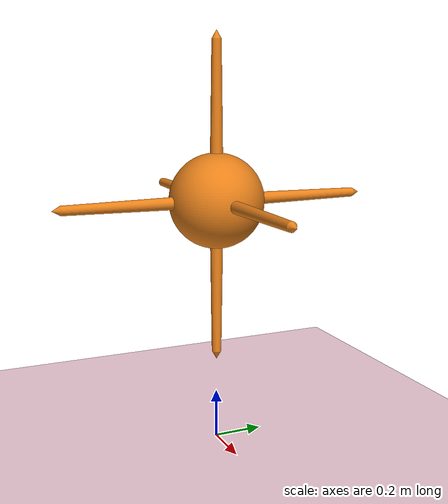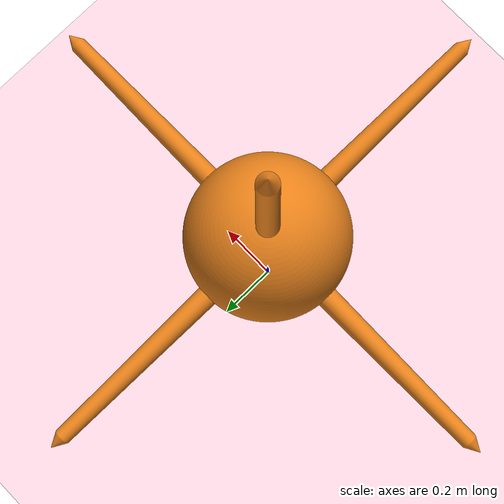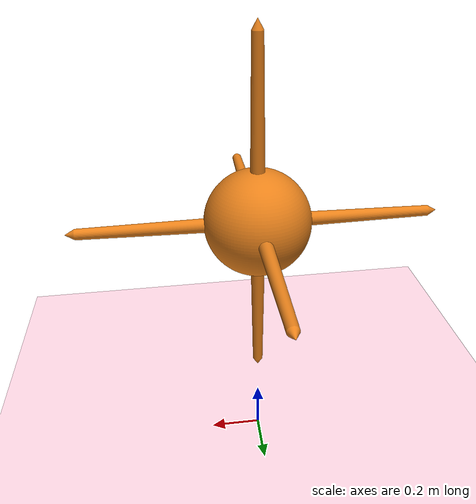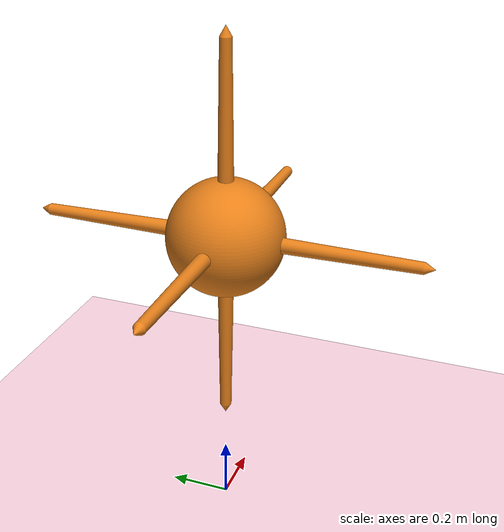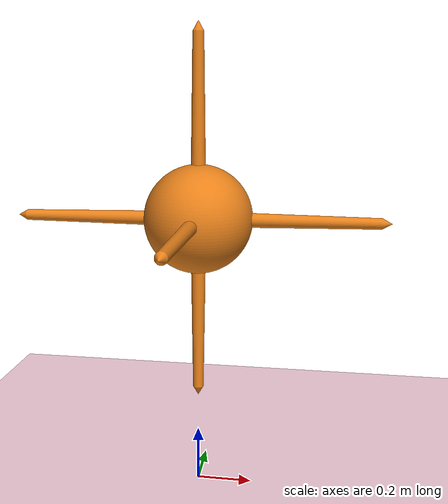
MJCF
<mujoco model='urchin6'>
    <compiler inertiafromgeom='auto' angle='degree' eulerseq='xyz' meshdir='meshes'/>
    <size nuser_actuator='1' nuser_sensor='1' nuser_geom='1'/>
    <option timestep='0.01' iterations='50' solver='PGS' gravity='0 0 -9.81'/>
    <!-- Gravity will change based on the exterr. body we are sim -->

    <visual>

    </visual>

    <default>
        <joint limited='true'/>
        <motor ctrllimited='true'/>
        <geom contype='0' conaffinity='0' condim='1' solref='0.005 1'/>
        <equality solref='0.005 1'/>
        <default class='urchin'>
            <geom material='urchin'/>
        </default>

        <default class='collision'>
            <!-- User parameter for geoms is used to identify collision types -->
            <geom material='collision' contype='1' user='2'/>
        </default>

	</default>

	<asset>
	    <texture type='skybox' builtin='gradient' width='100' height='100' rgb1='0.4 0.6 0.8' rgb2='0 0 0'/>
        <texture name='plane' type='2d' builtin='checker' rgb1='1 1 1' rgb2='1 0.7 0.8' width='100' height='100'/>
        <material name='plane' reflectance='0' texture='plane' texrepeat='1 1' texuniform='true'/>
        <material name='urchin' rgba='0.9 0.5 0.1 1'/>
        <mesh name='body' scale='1.5 1.5 1.5' file='sphere_body.stl'/>
        <mesh name='spine' file='rod_spine_w_point.stl'/>
        <material name='collision' rgba='0.1 0.5 0.9 0'/>
	</asset>

	<worldbody>
		<geom name='floor' pos='0.001 0 0' size='10 10 .125' type='plane' material='plane' conaffinity='15'/>
        <light castshadow='true' directional='true' pos='0 0 3' dir='0 0 -1' diffuse='0.4 0.4 0.4' specular='0 0 0'/>
        <body name='body' pos='0 0 1' childclass='urchin'>
            <camera name='track' pos='0 -3 1' zaxis='0 -1 0.5' mode='track'/>
            <joint type='slide' axis='1 0 0' limited='false'/>
            <joint type='slide' axis='0 1 0' limited='false'/>
            <joint type='slide' axis='0 0 1' limited='false' ref='1.01'/>
            <joint type='ball' limited='false'/>
            <geom type='mesh' mesh='body'/>
            <geom type='mesh' mesh='body' class='collision'/>
            <site name='imu' size='0.01' pos='0 0 0'/>

            <body name='spine1' pos='0 0 -.55' euler='0 0 0'>
                <joint name='spine1' type='slide' range='0 .1' damping='10'/>
                <geom type='mesh' mesh='spine' class='collision'/>
                <geom type='mesh' mesh='spine'/>
            </body>

            <body name='spine2' pos='0 .55 0' euler='90 0 0'>
                <joint name='spine2' type='slide' range='0 .1' damping='10'/>
                <geom type='mesh' mesh='spine' class='collision'/>
                <geom type='mesh' mesh='spine'/>
            </body>

            <body name='spine3' pos='0 0 .55' euler='180 0 0'>
                <joint name='spine3' type='slide' range='0 .1' damping='10'/>
                <geom type='mesh' mesh='spine' class='collision'/>
                <geom type='mesh' mesh='spine'/>
            </body>

            <body name='spine4' pos='0 -.55 0' euler='270 0 0'>
                <joint name='spine4' type='slide' range='0 .1' damping='10'/>
                <geom type='mesh' mesh='spine' class='collision'/>
                <geom type='mesh' mesh='spine'/>
            </body>

            <body name='spine5' pos='-.55 0 0' euler='0 90 0'>
                <joint name='spine5' type='slide' range='0 .1' damping='10'/>
                <geom type='mesh' mesh='spine' class='collision'/>
                <geom type='mesh' mesh='spine'/>
            </body>

            <body name='spine6' pos='.55 0 0' euler='0 270 0'>
                <joint name='spine6' type='slide' range='0 .1' damping='10'/>
                <geom type='mesh' mesh='spine' class='collision'/>
                <geom type='mesh' mesh='spine'/>
            </body>

        </body>
	</worldbody>

    <actuator>
        <position name='spine1'  joint='spine1' kp='100' ctrlrange='-100 100'/>
        <position name='spine2'  joint='spine2' kp='100' ctrlrange='-100 100'/>
        <position name='spine3'  joint='spine3' kp='100' ctrlrange='-100 100'/>
        <position name='spine4'  joint='spine4' kp='100' ctrlrange='-100 100'/>
        <position name='spine5'  joint='spine5' kp='100' ctrlrange='-100 100'/>
        <position name='spine6'  joint='spine6' kp='100' ctrlrange='-100 100'/>

    </actuator>

    <sensor>
        <framequat     name='body-orientation' objtype='site' objname='imu'/>
        <gyro          name='body-angular-velocity'    site='imu' noise='5e-4' cutoff='34.9'/>
        <accelerometer name='body-linear-acceleration' site='imu' noise='1e-2' cutoff='157'/>
        <magnetometer  name='body-magnetometer'        site='imu'/>
    </sensor>

</mujoco>
